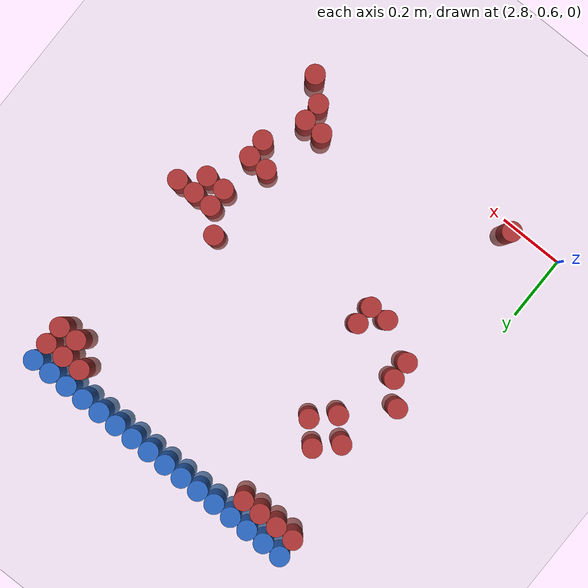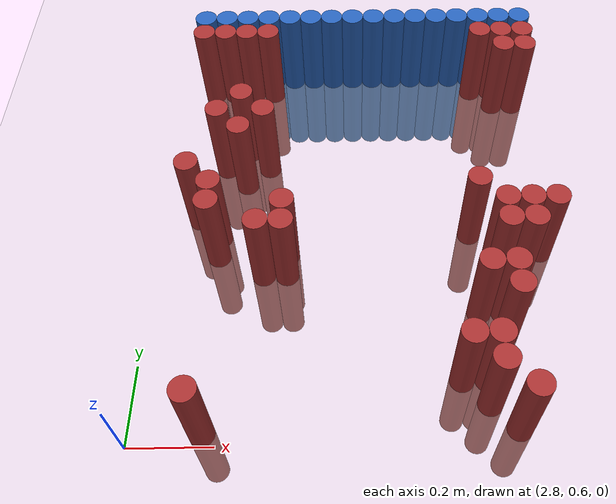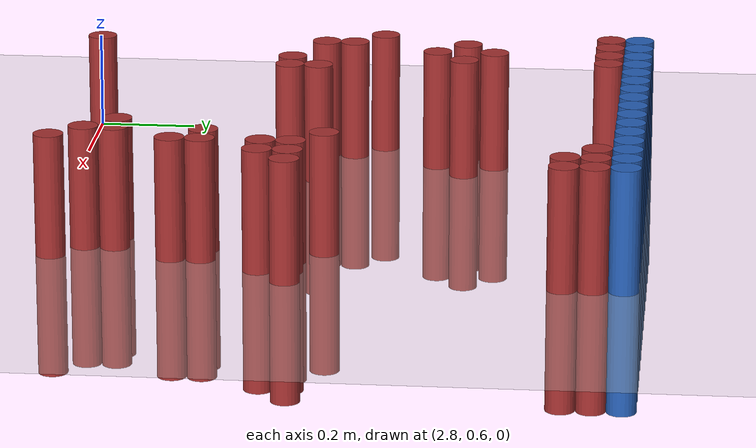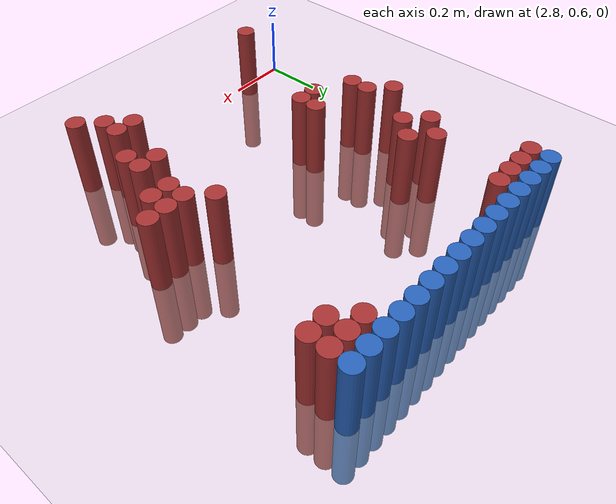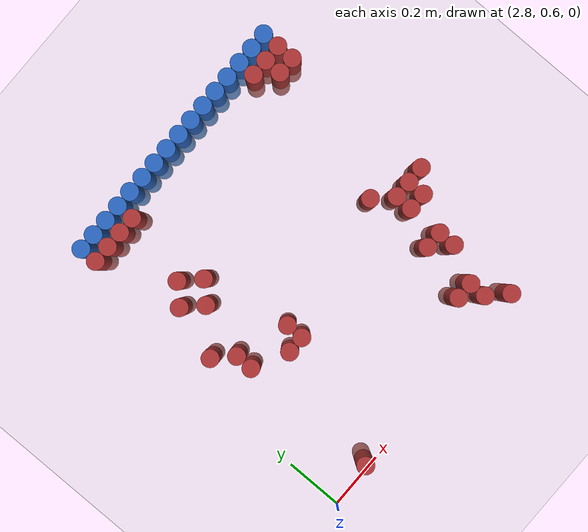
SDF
<sdf version="1.6">
 <world name="default">
  <model name="ground_plane">
   <static>1</static>
   <link name="link">
    <collision name="collision">
     <geometry><plane><normal>0 0 1</normal><size>100 100</size></plane></geometry>
     <surface><friction><ode><mu>100</mu><mu2>50</mu2></ode></friction></surface>
    </collision>
    <visual name="visual">
     <cast_shadows>0</cast_shadows>
     <geometry><plane><normal>0 0 1</normal><size>100 100</size></plane></geometry>
     <material>
      <script><uri>file://media/materials/scripts/gazebo.material</uri><name>Gazebo/Grey</name></script>
     </material>
    </visual>
   </link>
  </model>
  <model name="unit_cylinder_109">
   <static>1</static>
   <pose>2.910000 1.770000 0.000000 0.000000 0.000000 0.000000</pose>
   <link name="link">
    <inertial>
     <mass>1</mass>
     <inertia><ixx>0.145833</ixx><ixy>0</ixy><ixz>0</ixz><iyy>0.145833</iyy><iyz>0</iyz><izz>0.125</izz></inertia>
    </inertial>
    <collision name="collision">
     <geometry><cylinder><radius>0.030000</radius><length>0.5</length></cylinder></geometry>
    </collision>
    <visual name="visual">
     <geometry><cylinder><radius>0.030000</radius><length>0.5</length></cylinder></geometry>
     <material>
      <ambient>0.152000 0.379000 0.720000 1</ambient>
      <diffuse>0.152000 0.379000 0.720000 1</diffuse>
     </material>
     <material>
      <script><name>Gazebo/Grey</name><uri>file://media/materials/scripts/gazebo.material</uri></script>
     </material>
    </visual>
   </link>
  </model>
  <model name="unit_cylinder_110">
   <static>1</static>
   <pose>2.970000 1.770000 0.000000 0.000000 0.000000 0.000000</pose>
   <link name="link">
    <inertial>
     <mass>1</mass>
     <inertia><ixx>0.145833</ixx><ixy>0</ixy><ixz>0</ixz><iyy>0.145833</iyy><iyz>0</iyz><izz>0.125</izz></inertia>
    </inertial>
    <collision name="collision">
     <geometry><cylinder><radius>0.030000</radius><length>0.5</length></cylinder></geometry>
    </collision>
    <visual name="visual">
     <geometry><cylinder><radius>0.030000</radius><length>0.5</length></cylinder></geometry>
     <material>
      <ambient>0.152000 0.379000 0.720000 1</ambient>
      <diffuse>0.152000 0.379000 0.720000 1</diffuse>
     </material>
     <material>
      <script><name>Gazebo/Grey</name><uri>file://media/materials/scripts/gazebo.material</uri></script>
     </material>
    </visual>
   </link>
  </model>
  <model name="unit_cylinder_111">
   <static>1</static>
   <pose>3.030000 1.770000 0.000000 0.000000 0.000000 0.000000</pose>
   <link name="link">
    <inertial>
     <mass>1</mass>
     <inertia><ixx>0.145833</ixx><ixy>0</ixy><ixz>0</ixz><iyy>0.145833</iyy><iyz>0</iyz><izz>0.125</izz></inertia>
    </inertial>
    <collision name="collision">
     <geometry><cylinder><radius>0.030000</radius><length>0.5</length></cylinder></geometry>
    </collision>
    <visual name="visual">
     <geometry><cylinder><radius>0.030000</radius><length>0.5</length></cylinder></geometry>
     <material>
      <ambient>0.152000 0.379000 0.720000 1</ambient>
      <diffuse>0.152000 0.379000 0.720000 1</diffuse>
     </material>
     <material>
      <script><name>Gazebo/Grey</name><uri>file://media/materials/scripts/gazebo.material</uri></script>
     </material>
    </visual>
   </link>
  </model>
  <model name="unit_cylinder_112">
   <static>1</static>
   <pose>3.090000 1.770000 0.000000 0.000000 0.000000 0.000000</pose>
   <link name="link">
    <inertial>
     <mass>1</mass>
     <inertia><ixx>0.145833</ixx><ixy>0</ixy><ixz>0</ixz><iyy>0.145833</iyy><iyz>0</iyz><izz>0.125</izz></inertia>
    </inertial>
    <collision name="collision">
     <geometry><cylinder><radius>0.030000</radius><length>0.5</length></cylinder></geometry>
    </collision>
    <visual name="visual">
     <geometry><cylinder><radius>0.030000</radius><length>0.5</length></cylinder></geometry>
     <material>
      <ambient>0.152000 0.379000 0.720000 1</ambient>
      <diffuse>0.152000 0.379000 0.720000 1</diffuse>
     </material>
     <material>
      <script><name>Gazebo/Grey</name><uri>file://media/materials/scripts/gazebo.material</uri></script>
     </material>
    </visual>
   </link>
  </model>
  <model name="unit_cylinder_113">
   <static>1</static>
   <pose>3.150000 1.770000 0.000000 0.000000 0.000000 0.000000</pose>
   <link name="link">
    <inertial>
     <mass>1</mass>
     <inertia><ixx>0.145833</ixx><ixy>0</ixy><ixz>0</ixz><iyy>0.145833</iyy><iyz>0</iyz><izz>0.125</izz></inertia>
    </inertial>
    <collision name="collision">
     <geometry><cylinder><radius>0.030000</radius><length>0.5</length></cylinder></geometry>
    </collision>
    <visual name="visual">
     <geometry><cylinder><radius>0.030000</radius><length>0.5</length></cylinder></geometry>
     <material>
      <ambient>0.152000 0.379000 0.720000 1</ambient>
      <diffuse>0.152000 0.379000 0.720000 1</diffuse>
     </material>
     <material>
      <script><name>Gazebo/Grey</name><uri>file://media/materials/scripts/gazebo.material</uri></script>
     </material>
    </visual>
   </link>
  </model>
  <model name="unit_cylinder_114">
   <static>1</static>
   <pose>3.210000 1.770000 0.000000 0.000000 0.000000 0.000000</pose>
   <link name="link">
    <inertial>
     <mass>1</mass>
     <inertia><ixx>0.145833</ixx><ixy>0</ixy><ixz>0</ixz><iyy>0.145833</iyy><iyz>0</iyz><izz>0.125</izz></inertia>
    </inertial>
    <collision name="collision">
     <geometry><cylinder><radius>0.030000</radius><length>0.5</length></cylinder></geometry>
    </collision>
    <visual name="visual">
     <geometry><cylinder><radius>0.030000</radius><length>0.5</length></cylinder></geometry>
     <material>
      <ambient>0.152000 0.379000 0.720000 1</ambient>
      <diffuse>0.152000 0.379000 0.720000 1</diffuse>
     </material>
     <material>
      <script><name>Gazebo/Grey</name><uri>file://media/materials/scripts/gazebo.material</uri></script>
     </material>
    </visual>
   </link>
  </model>
  <model name="unit_cylinder_115">
   <static>1</static>
   <pose>3.270000 1.770000 0.000000 0.000000 0.000000 0.000000</pose>
   <link name="link">
    <inertial>
     <mass>1</mass>
     <inertia><ixx>0.145833</ixx><ixy>0</ixy><ixz>0</ixz><iyy>0.145833</iyy><iyz>0</iyz><izz>0.125</izz></inertia>
    </inertial>
    <collision name="collision">
     <geometry><cylinder><radius>0.030000</radius><length>0.5</length></cylinder></geometry>
    </collision>
    <visual name="visual">
     <geometry><cylinder><radius>0.030000</radius><length>0.5</length></cylinder></geometry>
     <material>
      <ambient>0.152000 0.379000 0.720000 1</ambient>
      <diffuse>0.152000 0.379000 0.720000 1</diffuse>
     </material>
     <material>
      <script><name>Gazebo/Grey</name><uri>file://media/materials/scripts/gazebo.material</uri></script>
     </material>
    </visual>
   </link>
  </model>
  <model name="unit_cylinder_116">
   <static>1</static>
   <pose>3.330000 1.770000 0.000000 0.000000 0.000000 0.000000</pose>
   <link name="link">
    <inertial>
     <mass>1</mass>
     <inertia><ixx>0.145833</ixx><ixy>0</ixy><ixz>0</ixz><iyy>0.145833</iyy><iyz>0</iyz><izz>0.125</izz></inertia>
    </inertial>
    <collision name="collision">
     <geometry><cylinder><radius>0.030000</radius><length>0.5</length></cylinder></geometry>
    </collision>
    <visual name="visual">
     <geometry><cylinder><radius>0.030000</radius><length>0.5</length></cylinder></geometry>
     <material>
      <ambient>0.152000 0.379000 0.720000 1</ambient>
      <diffuse>0.152000 0.379000 0.720000 1</diffuse>
     </material>
     <material>
      <script><name>Gazebo/Grey</name><uri>file://media/materials/scripts/gazebo.material</uri></script>
     </material>
    </visual>
   </link>
  </model>
  <model name="unit_cylinder_117">
   <static>1</static>
   <pose>3.390000 1.770000 0.000000 0.000000 0.000000 0.000000</pose>
   <link name="link">
    <inertial>
     <mass>1</mass>
     <inertia><ixx>0.145833</ixx><ixy>0</ixy><ixz>0</ixz><iyy>0.145833</iyy><iyz>0</iyz><izz>0.125</izz></inertia>
    </inertial>
    <collision name="collision">
     <geometry><cylinder><radius>0.030000</radius><length>0.5</length></cylinder></geometry>
    </collision>
    <visual name="visual">
     <geometry><cylinder><radius>0.030000</radius><length>0.5</length></cylinder></geometry>
     <material>
      <ambient>0.152000 0.379000 0.720000 1</ambient>
      <diffuse>0.152000 0.379000 0.720000 1</diffuse>
     </material>
     <material>
      <script><name>Gazebo/Grey</name><uri>file://media/materials/scripts/gazebo.material</uri></script>
     </material>
    </visual>
   </link>
  </model>
  <model name="unit_cylinder_118">
   <static>1</static>
   <pose>3.450000 1.770000 0.000000 0.000000 0.000000 0.000000</pose>
   <link name="link">
    <inertial>
     <mass>1</mass>
     <inertia><ixx>0.145833</ixx><ixy>0</ixy><ixz>0</ixz><iyy>0.145833</iyy><iyz>0</iyz><izz>0.125</izz></inertia>
    </inertial>
    <collision name="collision">
     <geometry><cylinder><radius>0.030000</radius><length>0.5</length></cylinder></geometry>
    </collision>
    <visual name="visual">
     <geometry><cylinder><radius>0.030000</radius><length>0.5</length></cylinder></geometry>
     <material>
      <ambient>0.152000 0.379000 0.720000 1</ambient>
      <diffuse>0.152000 0.379000 0.720000 1</diffuse>
     </material>
     <material>
      <script><name>Gazebo/Grey</name><uri>file://media/materials/scripts/gazebo.material</uri></script>
     </material>
    </visual>
   </link>
  </model>
  <model name="unit_cylinder_119">
   <static>1</static>
   <pose>3.510000 1.770000 0.000000 0.000000 0.000000 0.000000</pose>
   <link name="link">
    <inertial>
     <mass>1</mass>
     <inertia><ixx>0.145833</ixx><ixy>0</ixy><ixz>0</ixz><iyy>0.145833</iyy><iyz>0</iyz><izz>0.125</izz></inertia>
    </inertial>
    <collision name="collision">
     <geometry><cylinder><radius>0.030000</radius><length>0.5</length></cylinder></geometry>
    </collision>
    <visual name="visual">
     <geometry><cylinder><radius>0.030000</radius><length>0.5</length></cylinder></geometry>
     <material>
      <ambient>0.152000 0.379000 0.720000 1</ambient>
      <diffuse>0.152000 0.379000 0.720000 1</diffuse>
     </material>
     <material>
      <script><name>Gazebo/Grey</name><uri>file://media/materials/scripts/gazebo.material</uri></script>
     </material>
    </visual>
   </link>
  </model>
  <model name="unit_cylinder_120">
   <static>1</static>
   <pose>3.570000 1.770000 0.000000 0.000000 0.000000 0.000000</pose>
   <link name="link">
    <inertial>
     <mass>1</mass>
     <inertia><ixx>0.145833</ixx><ixy>0</ixy><ixz>0</ixz><iyy>0.145833</iyy><iyz>0</iyz><izz>0.125</izz></inertia>
    </inertial>
    <collision name="collision">
     <geometry><cylinder><radius>0.030000</radius><length>0.5</length></cylinder></geometry>
    </collision>
    <visual name="visual">
     <geometry><cylinder><radius>0.030000</radius><length>0.5</length></cylinder></geometry>
     <material>
      <ambient>0.152000 0.379000 0.720000 1</ambient>
      <diffuse>0.152000 0.379000 0.720000 1</diffuse>
     </material>
     <material>
      <script><name>Gazebo/Grey</name><uri>file://media/materials/scripts/gazebo.material</uri></script>
     </material>
    </visual>
   </link>
  </model>
  <model name="unit_cylinder_121">
   <static>1</static>
   <pose>3.630000 1.770000 0.000000 0.000000 0.000000 0.000000</pose>
   <link name="link">
    <inertial>
     <mass>1</mass>
     <inertia><ixx>0.145833</ixx><ixy>0</ixy><ixz>0</ixz><iyy>0.145833</iyy><iyz>0</iyz><izz>0.125</izz></inertia>
    </inertial>
    <collision name="collision">
     <geometry><cylinder><radius>0.030000</radius><length>0.5</length></cylinder></geometry>
    </collision>
    <visual name="visual">
     <geometry><cylinder><radius>0.030000</radius><length>0.5</length></cylinder></geometry>
     <material>
      <ambient>0.152000 0.379000 0.720000 1</ambient>
      <diffuse>0.152000 0.379000 0.720000 1</diffuse>
     </material>
     <material>
      <script><name>Gazebo/Grey</name><uri>file://media/materials/scripts/gazebo.material</uri></script>
     </material>
    </visual>
   </link>
  </model>
  <model name="unit_cylinder_122">
   <static>1</static>
   <pose>3.690000 1.770000 0.000000 0.000000 0.000000 0.000000</pose>
   <link name="link">
    <inertial>
     <mass>1</mass>
     <inertia><ixx>0.145833</ixx><ixy>0</ixy><ixz>0</ixz><iyy>0.145833</iyy><iyz>0</iyz><izz>0.125</izz></inertia>
    </inertial>
    <collision name="collision">
     <geometry><cylinder><radius>0.030000</radius><length>0.5</length></cylinder></geometry>
    </collision>
    <visual name="visual">
     <geometry><cylinder><radius>0.030000</radius><length>0.5</length></cylinder></geometry>
     <material>
      <ambient>0.152000 0.379000 0.720000 1</ambient>
      <diffuse>0.152000 0.379000 0.720000 1</diffuse>
     </material>
     <material>
      <script><name>Gazebo/Grey</name><uri>file://media/materials/scripts/gazebo.material</uri></script>
     </material>
    </visual>
   </link>
  </model>
  <model name="unit_cylinder_123">
   <static>1</static>
   <pose>3.750000 1.770000 0.000000 0.000000 0.000000 0.000000</pose>
   <link name="link">
    <inertial>
     <mass>1</mass>
     <inertia><ixx>0.145833</ixx><ixy>0</ixy><ixz>0</ixz><iyy>0.145833</iyy><iyz>0</iyz><izz>0.125</izz></inertia>
    </inertial>
    <collision name="collision">
     <geometry><cylinder><radius>0.030000</radius><length>0.5</length></cylinder></geometry>
    </collision>
    <visual name="visual">
     <geometry><cylinder><radius>0.030000</radius><length>0.5</length></cylinder></geometry>
     <material>
      <ambient>0.152000 0.379000 0.720000 1</ambient>
      <diffuse>0.152000 0.379000 0.720000 1</diffuse>
     </material>
     <material>
      <script><name>Gazebo/Grey</name><uri>file://media/materials/scripts/gazebo.material</uri></script>
     </material>
    </visual>
   </link>
  </model>
  <model name="unit_cylinder_124">
   <static>1</static>
   <pose>3.810000 1.770000 0.000000 0.000000 0.000000 0.000000</pose>
   <link name="link">
    <inertial>
     <mass>1</mass>
     <inertia><ixx>0.145833</ixx><ixy>0</ixy><ixz>0</ixz><iyy>0.145833</iyy><iyz>0</iyz><izz>0.125</izz></inertia>
    </inertial>
    <collision name="collision">
     <geometry><cylinder><radius>0.030000</radius><length>0.5</length></cylinder></geometry>
    </collision>
    <visual name="visual">
     <geometry><cylinder><radius>0.030000</radius><length>0.5</length></cylinder></geometry>
     <material>
      <ambient>0.152000 0.379000 0.720000 1</ambient>
      <diffuse>0.152000 0.379000 0.720000 1</diffuse>
     </material>
     <material>
      <script><name>Gazebo/Grey</name><uri>file://media/materials/scripts/gazebo.material</uri></script>
     </material>
    </visual>
   </link>
  </model>
  <model name="unit_cylinder_133">
   <static>1</static>
   <pose>2.910000 1.710000 0.000000 0.000000 0.000000 0.000000</pose>
   <link name="link">
    <inertial>
     <mass>1</mass>
     <inertia><ixx>0.145833</ixx><ixy>0</ixy><ixz>0</ixz><iyy>0.145833</iyy><iyz>0</iyz><izz>0.125</izz></inertia>
    </inertial>
    <collision name="collision">
     <geometry><cylinder><radius>0.030000</radius><length>0.5</length></cylinder></geometry>
    </collision>
    <visual name="visual">
     <geometry><cylinder><radius>0.030000</radius><length>0.5</length></cylinder></geometry>
     <material>
      <ambient>0.648000 0.192000 0.192000 1</ambient>
      <diffuse>0.648000 0.192000 0.192000 1</diffuse>
     </material>
     <material>
      <script><name>Gazebo/Grey</name><uri>file://media/materials/scripts/gazebo.material</uri></script>
     </material>
    </visual>
   </link>
  </model>
  <model name="unit_cylinder_134">
   <static>1</static>
   <pose>2.970000 1.710000 0.000000 0.000000 0.000000 0.000000</pose>
   <link name="link">
    <inertial>
     <mass>1</mass>
     <inertia><ixx>0.145833</ixx><ixy>0</ixy><ixz>0</ixz><iyy>0.145833</iyy><iyz>0</iyz><izz>0.125</izz></inertia>
    </inertial>
    <collision name="collision">
     <geometry><cylinder><radius>0.030000</radius><length>0.5</length></cylinder></geometry>
    </collision>
    <visual name="visual">
     <geometry><cylinder><radius>0.030000</radius><length>0.5</length></cylinder></geometry>
     <material>
      <ambient>0.648000 0.192000 0.192000 1</ambient>
      <diffuse>0.648000 0.192000 0.192000 1</diffuse>
     </material>
     <material>
      <script><name>Gazebo/Grey</name><uri>file://media/materials/scripts/gazebo.material</uri></script>
     </material>
    </visual>
   </link>
  </model>
  <model name="unit_cylinder_135">
   <static>1</static>
   <pose>3.030000 1.710000 0.000000 0.000000 0.000000 0.000000</pose>
   <link name="link">
    <inertial>
     <mass>1</mass>
     <inertia><ixx>0.145833</ixx><ixy>0</ixy><ixz>0</ixz><iyy>0.145833</iyy><iyz>0</iyz><izz>0.125</izz></inertia>
    </inertial>
    <collision name="collision">
     <geometry><cylinder><radius>0.030000</radius><length>0.5</length></cylinder></geometry>
    </collision>
    <visual name="visual">
     <geometry><cylinder><radius>0.030000</radius><length>0.5</length></cylinder></geometry>
     <material>
      <ambient>0.648000 0.192000 0.192000 1</ambient>
      <diffuse>0.648000 0.192000 0.192000 1</diffuse>
     </material>
     <material>
      <script><name>Gazebo/Grey</name><uri>file://media/materials/scripts/gazebo.material</uri></script>
     </material>
    </visual>
   </link>
  </model>
  <model name="unit_cylinder_136">
   <static>1</static>
   <pose>3.090000 1.710000 0.000000 0.000000 0.000000 0.000000</pose>
   <link name="link">
    <inertial>
     <mass>1</mass>
     <inertia><ixx>0.145833</ixx><ixy>0</ixy><ixz>0</ixz><iyy>0.145833</iyy><iyz>0</iyz><izz>0.125</izz></inertia>
    </inertial>
    <collision name="collision">
     <geometry><cylinder><radius>0.030000</radius><length>0.5</length></cylinder></geometry>
    </collision>
    <visual name="visual">
     <geometry><cylinder><radius>0.030000</radius><length>0.5</length></cylinder></geometry>
     <material>
      <ambient>0.648000 0.192000 0.192000 1</ambient>
      <diffuse>0.648000 0.192000 0.192000 1</diffuse>
     </material>
     <material>
      <script><name>Gazebo/Grey</name><uri>file://media/materials/scripts/gazebo.material</uri></script>
     </material>
    </visual>
   </link>
  </model>
  <model name="unit_cylinder_137">
   <static>1</static>
   <pose>3.690000 1.710000 0.000000 0.000000 0.000000 0.000000</pose>
   <link name="link">
    <inertial>
     <mass>1</mass>
     <inertia><ixx>0.145833</ixx><ixy>0</ixy><ixz>0</ixz><iyy>0.145833</iyy><iyz>0</iyz><izz>0.125</izz></inertia>
    </inertial>
    <collision name="collision">
     <geometry><cylinder><radius>0.030000</radius><length>0.5</length></cylinder></geometry>
    </collision>
    <visual name="visual">
     <geometry><cylinder><radius>0.030000</radius><length>0.5</length></cylinder></geometry>
     <material>
      <ambient>0.648000 0.192000 0.192000 1</ambient>
      <diffuse>0.648000 0.192000 0.192000 1</diffuse>
     </material>
     <material>
      <script><name>Gazebo/Grey</name><uri>file://media/materials/scripts/gazebo.material</uri></script>
     </material>
    </visual>
   </link>
  </model>
  <model name="unit_cylinder_138">
   <static>1</static>
   <pose>3.750000 1.710000 0.000000 0.000000 0.000000 0.000000</pose>
   <link name="link">
    <inertial>
     <mass>1</mass>
     <inertia><ixx>0.145833</ixx><ixy>0</ixy><ixz>0</ixz><iyy>0.145833</iyy><iyz>0</iyz><izz>0.125</izz></inertia>
    </inertial>
    <collision name="collision">
     <geometry><cylinder><radius>0.030000</radius><length>0.5</length></cylinder></geometry>
    </collision>
    <visual name="visual">
     <geometry><cylinder><radius>0.030000</radius><length>0.5</length></cylinder></geometry>
     <material>
      <ambient>0.648000 0.192000 0.192000 1</ambient>
      <diffuse>0.648000 0.192000 0.192000 1</diffuse>
     </material>
     <material>
      <script><name>Gazebo/Grey</name><uri>file://media/materials/scripts/gazebo.material</uri></script>
     </material>
    </visual>
   </link>
  </model>
  <model name="unit_cylinder_139">
   <static>1</static>
   <pose>3.810000 1.710000 0.000000 0.000000 0.000000 0.000000</pose>
   <link name="link">
    <inertial>
     <mass>1</mass>
     <inertia><ixx>0.145833</ixx><ixy>0</ixy><ixz>0</ixz><iyy>0.145833</iyy><iyz>0</iyz><izz>0.125</izz></inertia>
    </inertial>
    <collision name="collision">
     <geometry><cylinder><radius>0.030000</radius><length>0.5</length></cylinder></geometry>
    </collision>
    <visual name="visual">
     <geometry><cylinder><radius>0.030000</radius><length>0.5</length></cylinder></geometry>
     <material>
      <ambient>0.648000 0.192000 0.192000 1</ambient>
      <diffuse>0.648000 0.192000 0.192000 1</diffuse>
     </material>
     <material>
      <script><name>Gazebo/Grey</name><uri>file://media/materials/scripts/gazebo.material</uri></script>
     </material>
    </visual>
   </link>
  </model>
  <model name="unit_cylinder_143">
   <static>1</static>
   <pose>3.750000 1.650000 0.000000 0.000000 0.000000 0.000000</pose>
   <link name="link">
    <inertial>
     <mass>1</mass>
     <inertia><ixx>0.145833</ixx><ixy>0</ixy><ixz>0</ixz><iyy>0.145833</iyy><iyz>0</iyz><izz>0.125</izz></inertia>
    </inertial>
    <collision name="collision">
     <geometry><cylinder><radius>0.030000</radius><length>0.5</length></cylinder></geometry>
    </collision>
    <visual name="visual">
     <geometry><cylinder><radius>0.030000</radius><length>0.5</length></cylinder></geometry>
     <material>
      <ambient>0.648000 0.192000 0.192000 1</ambient>
      <diffuse>0.648000 0.192000 0.192000 1</diffuse>
     </material>
     <material>
      <script><name>Gazebo/Grey</name><uri>file://media/materials/scripts/gazebo.material</uri></script>
     </material>
    </visual>
   </link>
  </model>
  <model name="unit_cylinder_144">
   <static>1</static>
   <pose>3.810000 1.650000 0.000000 0.000000 0.000000 0.000000</pose>
   <link name="link">
    <inertial>
     <mass>1</mass>
     <inertia><ixx>0.145833</ixx><ixy>0</ixy><ixz>0</ixz><iyy>0.145833</iyy><iyz>0</iyz><izz>0.125</izz></inertia>
    </inertial>
    <collision name="collision">
     <geometry><cylinder><radius>0.030000</radius><length>0.5</length></cylinder></geometry>
    </collision>
    <visual name="visual">
     <geometry><cylinder><radius>0.030000</radius><length>0.5</length></cylinder></geometry>
     <material>
      <ambient>0.648000 0.192000 0.192000 1</ambient>
      <diffuse>0.648000 0.192000 0.192000 1</diffuse>
     </material>
     <material>
      <script><name>Gazebo/Grey</name><uri>file://media/materials/scripts/gazebo.material</uri></script>
     </material>
    </visual>
   </link>
  </model>
  <model name="unit_cylinder_156">
   <static>1</static>
   <pose>3.030000 1.470000 0.000000 0.000000 0.000000 0.000000</pose>
   <link name="link">
    <inertial>
     <mass>1</mass>
     <inertia><ixx>0.145833</ixx><ixy>0</ixy><ixz>0</ixz><iyy>0.145833</iyy><iyz>0</iyz><izz>0.125</izz></inertia>
    </inertial>
    <collision name="collision">
     <geometry><cylinder><radius>0.030000</radius><length>0.5</length></cylinder></geometry>
    </collision>
    <visual name="visual">
     <geometry><cylinder><radius>0.030000</radius><length>0.5</length></cylinder></geometry>
     <material>
      <ambient>0.648000 0.192000 0.192000 1</ambient>
      <diffuse>0.648000 0.192000 0.192000 1</diffuse>
     </material>
     <material>
      <script><name>Gazebo/Grey</name><uri>file://media/materials/scripts/gazebo.material</uri></script>
     </material>
    </visual>
   </link>
  </model>
  <model name="unit_cylinder_159">
   <static>1</static>
   <pose>2.970000 1.410000 0.000000 0.000000 0.000000 0.000000</pose>
   <link name="link">
    <inertial>
     <mass>1</mass>
     <inertia><ixx>0.145833</ixx><ixy>0</ixy><ixz>0</ixz><iyy>0.145833</iyy><iyz>0</iyz><izz>0.125</izz></inertia>
    </inertial>
    <collision name="collision">
     <geometry><cylinder><radius>0.030000</radius><length>0.5</length></cylinder></geometry>
    </collision>
    <visual name="visual">
     <geometry><cylinder><radius>0.030000</radius><length>0.5</length></cylinder></geometry>
     <material>
      <ambient>0.648000 0.192000 0.192000 1</ambient>
      <diffuse>0.648000 0.192000 0.192000 1</diffuse>
     </material>
     <material>
      <script><name>Gazebo/Grey</name><uri>file://media/materials/scripts/gazebo.material</uri></script>
     </material>
    </visual>
   </link>
  </model>
  <model name="unit_cylinder_160">
   <static>1</static>
   <pose>3.090000 1.410000 0.000000 0.000000 0.000000 0.000000</pose>
   <link name="link">
    <inertial>
     <mass>1</mass>
     <inertia><ixx>0.145833</ixx><ixy>0</ixy><ixz>0</ixz><iyy>0.145833</iyy><iyz>0</iyz><izz>0.125</izz></inertia>
    </inertial>
    <collision name="collision">
     <geometry><cylinder><radius>0.030000</radius><length>0.5</length></cylinder></geometry>
    </collision>
    <visual name="visual">
     <geometry><cylinder><radius>0.030000</radius><length>0.5</length></cylinder></geometry>
     <material>
      <ambient>0.648000 0.192000 0.192000 1</ambient>
      <diffuse>0.648000 0.192000 0.192000 1</diffuse>
     </material>
     <material>
      <script><name>Gazebo/Grey</name><uri>file://media/materials/scripts/gazebo.material</uri></script>
     </material>
    </visual>
   </link>
  </model>
  <model name="unit_cylinder_164">
   <static>1</static>
   <pose>3.030000 1.350000 0.000000 0.000000 0.000000 0.000000</pose>
   <link name="link">
    <inertial>
     <mass>1</mass>
     <inertia><ixx>0.145833</ixx><ixy>0</ixy><ixz>0</ixz><iyy>0.145833</iyy><iyz>0</iyz><izz>0.125</izz></inertia>
    </inertial>
    <collision name="collision">
     <geometry><cylinder><radius>0.030000</radius><length>0.5</length></cylinder></geometry>
    </collision>
    <visual name="visual">
     <geometry><cylinder><radius>0.030000</radius><length>0.5</length></cylinder></geometry>
     <material>
      <ambient>0.648000 0.192000 0.192000 1</ambient>
      <diffuse>0.648000 0.192000 0.192000 1</diffuse>
     </material>
     <material>
      <script><name>Gazebo/Grey</name><uri>file://media/materials/scripts/gazebo.material</uri></script>
     </material>
    </visual>
   </link>
  </model>
  <model name="unit_cylinder_177">
   <static>1</static>
   <pose>2.910000 1.230000 0.000000 0.000000 0.000000 0.000000</pose>
   <link name="link">
    <inertial>
     <mass>1</mass>
     <inertia><ixx>0.145833</ixx><ixy>0</ixy><ixz>0</ixz><iyy>0.145833</iyy><iyz>0</iyz><izz>0.125</izz></inertia>
    </inertial>
    <collision name="collision">
     <geometry><cylinder><radius>0.030000</radius><length>0.5</length></cylinder></geometry>
    </collision>
    <visual name="visual">
     <geometry><cylinder><radius>0.030000</radius><length>0.5</length></cylinder></geometry>
     <material>
      <ambient>0.648000 0.192000 0.192000 1</ambient>
      <diffuse>0.648000 0.192000 0.192000 1</diffuse>
     </material>
     <material>
      <script><name>Gazebo/Grey</name><uri>file://media/materials/scripts/gazebo.material</uri></script>
     </material>
    </visual>
   </link>
  </model>
  <model name="unit_cylinder_181">
   <static>1</static>
   <pose>2.970000 1.170000 0.000000 0.000000 0.000000 0.000000</pose>
   <link name="link">
    <inertial>
     <mass>1</mass>
     <inertia><ixx>0.145833</ixx><ixy>0</ixy><ixz>0</ixz><iyy>0.145833</iyy><iyz>0</iyz><izz>0.125</izz></inertia>
    </inertial>
    <collision name="collision">
     <geometry><cylinder><radius>0.030000</radius><length>0.5</length></cylinder></geometry>
    </collision>
    <visual name="visual">
     <geometry><cylinder><radius>0.030000</radius><length>0.5</length></cylinder></geometry>
     <material>
      <ambient>0.648000 0.192000 0.192000 1</ambient>
      <diffuse>0.648000 0.192000 0.192000 1</diffuse>
     </material>
     <material>
      <script><name>Gazebo/Grey</name><uri>file://media/materials/scripts/gazebo.material</uri></script>
     </material>
    </visual>
   </link>
  </model>
  <model name="unit_cylinder_182">
   <static>1</static>
   <pose>3.630000 1.170000 0.000000 0.000000 0.000000 0.000000</pose>
   <link name="link">
    <inertial>
     <mass>1</mass>
     <inertia><ixx>0.145833</ixx><ixy>0</ixy><ixz>0</ixz><iyy>0.145833</iyy><iyz>0</iyz><izz>0.125</izz></inertia>
    </inertial>
    <collision name="collision">
     <geometry><cylinder><radius>0.030000</radius><length>0.5</length></cylinder></geometry>
    </collision>
    <visual name="visual">
     <geometry><cylinder><radius>0.030000</radius><length>0.5</length></cylinder></geometry>
     <material>
      <ambient>0.648000 0.192000 0.192000 1</ambient>
      <diffuse>0.648000 0.192000 0.192000 1</diffuse>
     </material>
     <material>
      <script><name>Gazebo/Grey</name><uri>file://media/materials/scripts/gazebo.material</uri></script>
     </material>
    </visual>
   </link>
  </model>
  <model name="unit_cylinder_191">
   <static>1</static>
   <pose>2.970000 1.110000 0.000000 0.000000 0.000000 0.000000</pose>
   <link name="link">
    <inertial>
     <mass>1</mass>
     <inertia><ixx>0.145833</ixx><ixy>0</ixy><ixz>0</ixz><iyy>0.145833</iyy><iyz>0</iyz><izz>0.125</izz></inertia>
    </inertial>
    <collision name="collision">
     <geometry><cylinder><radius>0.030000</radius><length>0.5</length></cylinder></geometry>
    </collision>
    <visual name="visual">
     <geometry><cylinder><radius>0.030000</radius><length>0.5</length></cylinder></geometry>
     <material>
      <ambient>0.648000 0.192000 0.192000 1</ambient>
      <diffuse>0.648000 0.192000 0.192000 1</diffuse>
     </material>
     <material>
      <script><name>Gazebo/Grey</name><uri>file://media/materials/scripts/gazebo.material</uri></script>
     </material>
    </visual>
   </link>
  </model>
  <model name="unit_cylinder_192">
   <static>1</static>
   <pose>3.150000 1.110000 0.000000 0.000000 0.000000 0.000000</pose>
   <link name="link">
    <inertial>
     <mass>1</mass>
     <inertia><ixx>0.145833</ixx><ixy>0</ixy><ixz>0</ixz><iyy>0.145833</iyy><iyz>0</iyz><izz>0.125</izz></inertia>
    </inertial>
    <collision name="collision">
     <geometry><cylinder><radius>0.030000</radius><length>0.5</length></cylinder></geometry>
    </collision>
    <visual name="visual">
     <geometry><cylinder><radius>0.030000</radius><length>0.5</length></cylinder></geometry>
     <material>
      <ambient>0.648000 0.192000 0.192000 1</ambient>
      <diffuse>0.648000 0.192000 0.192000 1</diffuse>
     </material>
     <material>
      <script><name>Gazebo/Grey</name><uri>file://media/materials/scripts/gazebo.material</uri></script>
     </material>
    </visual>
   </link>
  </model>
  <model name="unit_cylinder_193">
   <static>1</static>
   <pose>3.690000 1.110000 0.000000 0.000000 0.000000 0.000000</pose>
   <link name="link">
    <inertial>
     <mass>1</mass>
     <inertia><ixx>0.145833</ixx><ixy>0</ixy><ixz>0</ixz><iyy>0.145833</iyy><iyz>0</iyz><izz>0.125</izz></inertia>
    </inertial>
    <collision name="collision">
     <geometry><cylinder><radius>0.030000</radius><length>0.5</length></cylinder></geometry>
    </collision>
    <visual name="visual">
     <geometry><cylinder><radius>0.030000</radius><length>0.5</length></cylinder></geometry>
     <material>
      <ambient>0.648000 0.192000 0.192000 1</ambient>
      <diffuse>0.648000 0.192000 0.192000 1</diffuse>
     </material>
     <material>
      <script><name>Gazebo/Grey</name><uri>file://media/materials/scripts/gazebo.material</uri></script>
     </material>
    </visual>
   </link>
  </model>
  <model name="unit_cylinder_194">
   <static>1</static>
   <pose>3.750000 1.110000 0.000000 0.000000 0.000000 0.000000</pose>
   <link name="link">
    <inertial>
     <mass>1</mass>
     <inertia><ixx>0.145833</ixx><ixy>0</ixy><ixz>0</ixz><iyy>0.145833</iyy><iyz>0</iyz><izz>0.125</izz></inertia>
    </inertial>
    <collision name="collision">
     <geometry><cylinder><radius>0.030000</radius><length>0.5</length></cylinder></geometry>
    </collision>
    <visual name="visual">
     <geometry><cylinder><radius>0.030000</radius><length>0.5</length></cylinder></geometry>
     <material>
      <ambient>0.648000 0.192000 0.192000 1</ambient>
      <diffuse>0.648000 0.192000 0.192000 1</diffuse>
     </material>
     <material>
      <script><name>Gazebo/Grey</name><uri>file://media/materials/scripts/gazebo.material</uri></script>
     </material>
    </visual>
   </link>
  </model>
  <model name="unit_cylinder_195">
   <static>1</static>
   <pose>3.810000 1.110000 0.000000 0.000000 0.000000 0.000000</pose>
   <link name="link">
    <inertial>
     <mass>1</mass>
     <inertia><ixx>0.145833</ixx><ixy>0</ixy><ixz>0</ixz><iyy>0.145833</iyy><iyz>0</iyz><izz>0.125</izz></inertia>
    </inertial>
    <collision name="collision">
     <geometry><cylinder><radius>0.030000</radius><length>0.5</length></cylinder></geometry>
    </collision>
    <visual name="visual">
     <geometry><cylinder><radius>0.030000</radius><length>0.5</length></cylinder></geometry>
     <material>
      <ambient>0.648000 0.192000 0.192000 1</ambient>
      <diffuse>0.648000 0.192000 0.192000 1</diffuse>
     </material>
     <material>
      <script><name>Gazebo/Grey</name><uri>file://media/materials/scripts/gazebo.material</uri></script>
     </material>
    </visual>
   </link>
  </model>
  <model name="unit_cylinder_202">
   <static>1</static>
   <pose>3.090000 1.050000 0.000000 0.000000 0.000000 0.000000</pose>
   <link name="link">
    <inertial>
     <mass>1</mass>
     <inertia><ixx>0.145833</ixx><ixy>0</ixy><ixz>0</ixz><iyy>0.145833</iyy><iyz>0</iyz><izz>0.125</izz></inertia>
    </inertial>
    <collision name="collision">
     <geometry><cylinder><radius>0.030000</radius><length>0.5</length></cylinder></geometry>
    </collision>
    <visual name="visual">
     <geometry><cylinder><radius>0.030000</radius><length>0.5</length></cylinder></geometry>
     <material>
      <ambient>0.648000 0.192000 0.192000 1</ambient>
      <diffuse>0.648000 0.192000 0.192000 1</diffuse>
     </material>
     <material>
      <script><name>Gazebo/Grey</name><uri>file://media/materials/scripts/gazebo.material</uri></script>
     </material>
    </visual>
   </link>
  </model>
  <model name="unit_cylinder_203">
   <static>1</static>
   <pose>3.150000 1.050000 0.000000 0.000000 0.000000 0.000000</pose>
   <link name="link">
    <inertial>
     <mass>1</mass>
     <inertia><ixx>0.145833</ixx><ixy>0</ixy><ixz>0</ixz><iyy>0.145833</iyy><iyz>0</iyz><izz>0.125</izz></inertia>
    </inertial>
    <collision name="collision">
     <geometry><cylinder><radius>0.030000</radius><length>0.5</length></cylinder></geometry>
    </collision>
    <visual name="visual">
     <geometry><cylinder><radius>0.030000</radius><length>0.5</length></cylinder></geometry>
     <material>
      <ambient>0.648000 0.192000 0.192000 1</ambient>
      <diffuse>0.648000 0.192000 0.192000 1</diffuse>
     </material>
     <material>
      <script><name>Gazebo/Grey</name><uri>file://media/materials/scripts/gazebo.material</uri></script>
     </material>
    </visual>
   </link>
  </model>
  <model name="unit_cylinder_204">
   <static>1</static>
   <pose>3.690000 1.050000 0.000000 0.000000 0.000000 0.000000</pose>
   <link name="link">
    <inertial>
     <mass>1</mass>
     <inertia><ixx>0.145833</ixx><ixy>0</ixy><ixz>0</ixz><iyy>0.145833</iyy><iyz>0</iyz><izz>0.125</izz></inertia>
    </inertial>
    <collision name="collision">
     <geometry><cylinder><radius>0.030000</radius><length>0.5</length></cylinder></geometry>
    </collision>
    <visual name="visual">
     <geometry><cylinder><radius>0.030000</radius><length>0.5</length></cylinder></geometry>
     <material>
      <ambient>0.648000 0.192000 0.192000 1</ambient>
      <diffuse>0.648000 0.192000 0.192000 1</diffuse>
     </material>
     <material>
      <script><name>Gazebo/Grey</name><uri>file://media/materials/scripts/gazebo.material</uri></script>
     </material>
    </visual>
   </link>
  </model>
  <model name="unit_cylinder_205">
   <static>1</static>
   <pose>3.750000 1.050000 0.000000 0.000000 0.000000 0.000000</pose>
   <link name="link">
    <inertial>
     <mass>1</mass>
     <inertia><ixx>0.145833</ixx><ixy>0</ixy><ixz>0</ixz><iyy>0.145833</iyy><iyz>0</iyz><izz>0.125</izz></inertia>
    </inertial>
    <collision name="collision">
     <geometry><cylinder><radius>0.030000</radius><length>0.5</length></cylinder></geometry>
    </collision>
    <visual name="visual">
     <geometry><cylinder><radius>0.030000</radius><length>0.5</length></cylinder></geometry>
     <material>
      <ambient>0.648000 0.192000 0.192000 1</ambient>
      <diffuse>0.648000 0.192000 0.192000 1</diffuse>
     </material>
     <material>
      <script><name>Gazebo/Grey</name><uri>file://media/materials/scripts/gazebo.material</uri></script>
     </material>
    </visual>
   </link>
  </model>
  <model name="unit_cylinder_213">
   <static>1</static>
   <pose>3.630000 0.930000 0.000000 0.000000 0.000000 0.000000</pose>
   <link name="link">
    <inertial>
     <mass>1</mass>
     <inertia><ixx>0.145833</ixx><ixy>0</ixy><ixz>0</ixz><iyy>0.145833</iyy><iyz>0</iyz><izz>0.125</izz></inertia>
    </inertial>
    <collision name="collision">
     <geometry><cylinder><radius>0.030000</radius><length>0.5</length></cylinder></geometry>
    </collision>
    <visual name="visual">
     <geometry><cylinder><radius>0.030000</radius><length>0.5</length></cylinder></geometry>
     <material>
      <ambient>0.648000 0.192000 0.192000 1</ambient>
      <diffuse>0.648000 0.192000 0.192000 1</diffuse>
     </material>
     <material>
      <script><name>Gazebo/Grey</name><uri>file://media/materials/scripts/gazebo.material</uri></script>
     </material>
    </visual>
   </link>
  </model>
  <model name="unit_cylinder_214">
   <static>1</static>
   <pose>3.690000 0.930000 0.000000 0.000000 0.000000 0.000000</pose>
   <link name="link">
    <inertial>
     <mass>1</mass>
     <inertia><ixx>0.145833</ixx><ixy>0</ixy><ixz>0</ixz><iyy>0.145833</iyy><iyz>0</iyz><izz>0.125</izz></inertia>
    </inertial>
    <collision name="collision">
     <geometry><cylinder><radius>0.030000</radius><length>0.5</length></cylinder></geometry>
    </collision>
    <visual name="visual">
     <geometry><cylinder><radius>0.030000</radius><length>0.5</length></cylinder></geometry>
     <material>
      <ambient>0.648000 0.192000 0.192000 1</ambient>
      <diffuse>0.648000 0.192000 0.192000 1</diffuse>
     </material>
     <material>
      <script><name>Gazebo/Grey</name><uri>file://media/materials/scripts/gazebo.material</uri></script>
     </material>
    </visual>
   </link>
  </model>
  <model name="unit_cylinder_217">
   <static>1</static>
   <pose>3.690000 0.870000 0.000000 0.000000 0.000000 0.000000</pose>
   <link name="link">
    <inertial>
     <mass>1</mass>
     <inertia><ixx>0.145833</ixx><ixy>0</ixy><ixz>0</ixz><iyy>0.145833</iyy><iyz>0</iyz><izz>0.125</izz></inertia>
    </inertial>
    <collision name="collision">
     <geometry><cylinder><radius>0.030000</radius><length>0.5</length></cylinder></geometry>
    </collision>
    <visual name="visual">
     <geometry><cylinder><radius>0.030000</radius><length>0.5</length></cylinder></geometry>
     <material>
      <ambient>0.648000 0.192000 0.192000 1</ambient>
      <diffuse>0.648000 0.192000 0.192000 1</diffuse>
     </material>
     <material>
      <script><name>Gazebo/Grey</name><uri>file://media/materials/scripts/gazebo.material</uri></script>
     </material>
    </visual>
   </link>
  </model>
  <model name="unit_cylinder_223">
   <static>1</static>
   <pose>3.570000 0.750000 0.000000 0.000000 0.000000 0.000000</pose>
   <link name="link">
    <inertial>
     <mass>1</mass>
     <inertia><ixx>0.145833</ixx><ixy>0</ixy><ixz>0</ixz><iyy>0.145833</iyy><iyz>0</iyz><izz>0.125</izz></inertia>
    </inertial>
    <collision name="collision">
     <geometry><cylinder><radius>0.030000</radius><length>0.5</length></cylinder></geometry>
    </collision>
    <visual name="visual">
     <geometry><cylinder><radius>0.030000</radius><length>0.5</length></cylinder></geometry>
     <material>
      <ambient>0.648000 0.192000 0.192000 1</ambient>
      <diffuse>0.648000 0.192000 0.192000 1</diffuse>
     </material>
     <material>
      <script><name>Gazebo/Grey</name><uri>file://media/materials/scripts/gazebo.material</uri></script>
     </material>
    </visual>
   </link>
  </model>
  <model name="unit_cylinder_224">
   <static>1</static>
   <pose>3.630000 0.750000 0.000000 0.000000 0.000000 0.000000</pose>
   <link name="link">
    <inertial>
     <mass>1</mass>
     <inertia><ixx>0.145833</ixx><ixy>0</ixy><ixz>0</ixz><iyy>0.145833</iyy><iyz>0</iyz><izz>0.125</izz></inertia>
    </inertial>
    <collision name="collision">
     <geometry><cylinder><radius>0.030000</radius><length>0.5</length></cylinder></geometry>
    </collision>
    <visual name="visual">
     <geometry><cylinder><radius>0.030000</radius><length>0.5</length></cylinder></geometry>
     <material>
      <ambient>0.648000 0.192000 0.192000 1</ambient>
      <diffuse>0.648000 0.192000 0.192000 1</diffuse>
     </material>
     <material>
      <script><name>Gazebo/Grey</name><uri>file://media/materials/scripts/gazebo.material</uri></script>
     </material>
    </visual>
   </link>
  </model>
  <model name="unit_cylinder_228">
   <static>1</static>
   <pose>3.630000 0.690000 0.000000 0.000000 0.000000 0.000000</pose>
   <link name="link">
    <inertial>
     <mass>1</mass>
     <inertia><ixx>0.145833</ixx><ixy>0</ixy><ixz>0</ixz><iyy>0.145833</iyy><iyz>0</iyz><izz>0.125</izz></inertia>
    </inertial>
    <collision name="collision">
     <geometry><cylinder><radius>0.030000</radius><length>0.5</length></cylinder></geometry>
    </collision>
    <visual name="visual">
     <geometry><cylinder><radius>0.030000</radius><length>0.5</length></cylinder></geometry>
     <material>
      <ambient>0.648000 0.192000 0.192000 1</ambient>
      <diffuse>0.648000 0.192000 0.192000 1</diffuse>
     </material>
     <material>
      <script><name>Gazebo/Grey</name><uri>file://media/materials/scripts/gazebo.material</uri></script>
     </material>
    </visual>
   </link>
  </model>
  <model name="unit_cylinder_230">
   <static>1</static>
   <pose>2.970000 0.630000 0.000000 0.000000 0.000000 0.000000</pose>
   <link name="link">
    <inertial>
     <mass>1</mass>
     <inertia><ixx>0.145833</ixx><ixy>0</ixy><ixz>0</ixz><iyy>0.145833</iyy><iyz>0</iyz><izz>0.125</izz></inertia>
    </inertial>
    <collision name="collision">
     <geometry><cylinder><radius>0.030000</radius><length>0.5</length></cylinder></geometry>
    </collision>
    <visual name="visual">
     <geometry><cylinder><radius>0.030000</radius><length>0.5</length></cylinder></geometry>
     <material>
      <ambient>0.648000 0.192000 0.192000 1</ambient>
      <diffuse>0.648000 0.192000 0.192000 1</diffuse>
     </material>
     <material>
      <script><name>Gazebo/Grey</name><uri>file://media/materials/scripts/gazebo.material</uri></script>
     </material>
    </visual>
   </link>
  </model>
  <model name="unit_cylinder_231">
   <static>1</static>
   <pose>3.690000 0.630000 0.000000 0.000000 0.000000 0.000000</pose>
   <link name="link">
    <inertial>
     <mass>1</mass>
     <inertia><ixx>0.145833</ixx><ixy>0</ixy><ixz>0</ixz><iyy>0.145833</iyy><iyz>0</iyz><izz>0.125</izz></inertia>
    </inertial>
    <collision name="collision">
     <geometry><cylinder><radius>0.030000</radius><length>0.5</length></cylinder></geometry>
    </collision>
    <visual name="visual">
     <geometry><cylinder><radius>0.030000</radius><length>0.5</length></cylinder></geometry>
     <material>
      <ambient>0.648000 0.192000 0.192000 1</ambient>
      <diffuse>0.648000 0.192000 0.192000 1</diffuse>
     </material>
     <material>
      <script><name>Gazebo/Grey</name><uri>file://media/materials/scripts/gazebo.material</uri></script>
     </material>
    </visual>
   </link>
  </model>
 </world>
</sdf>
